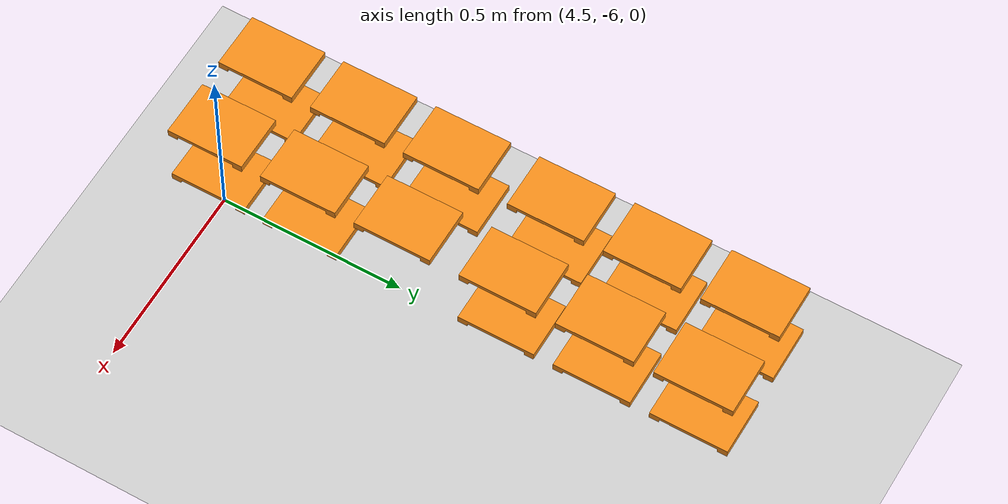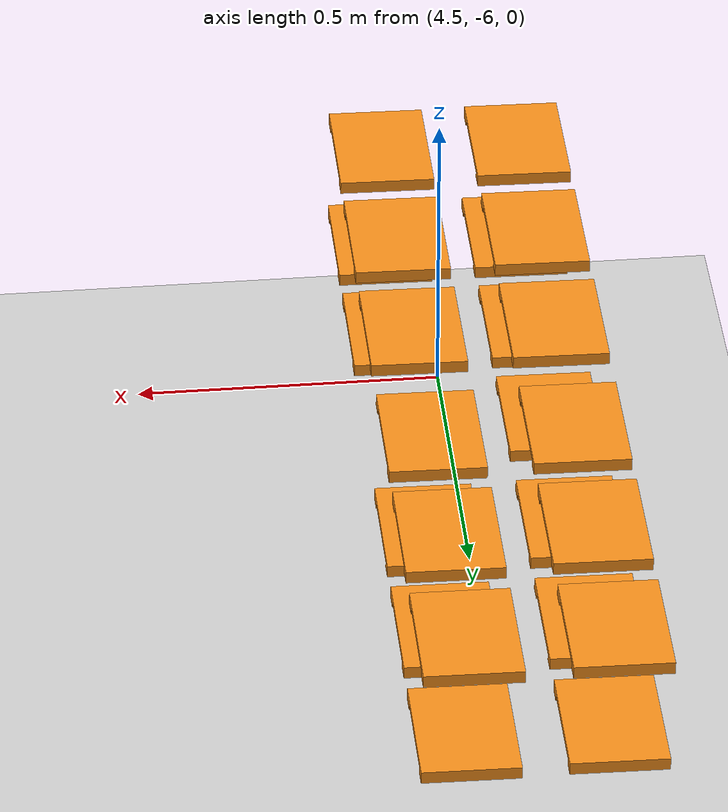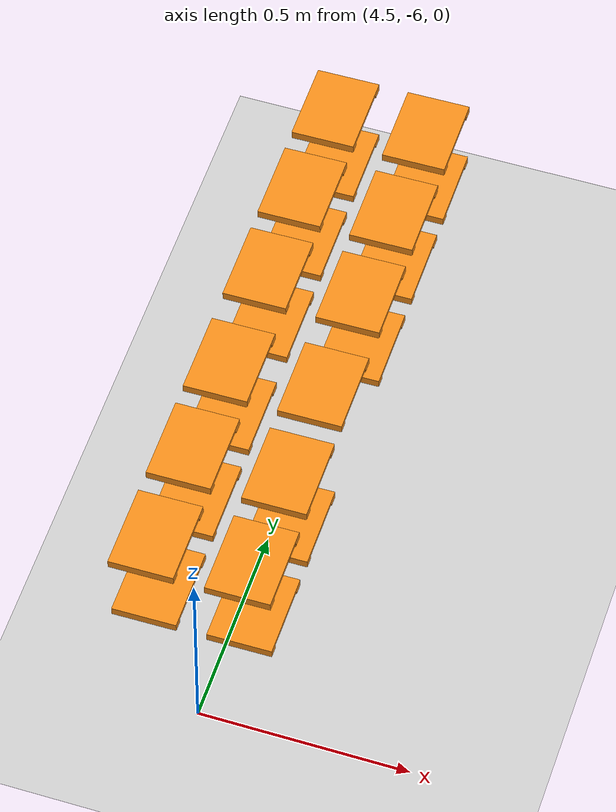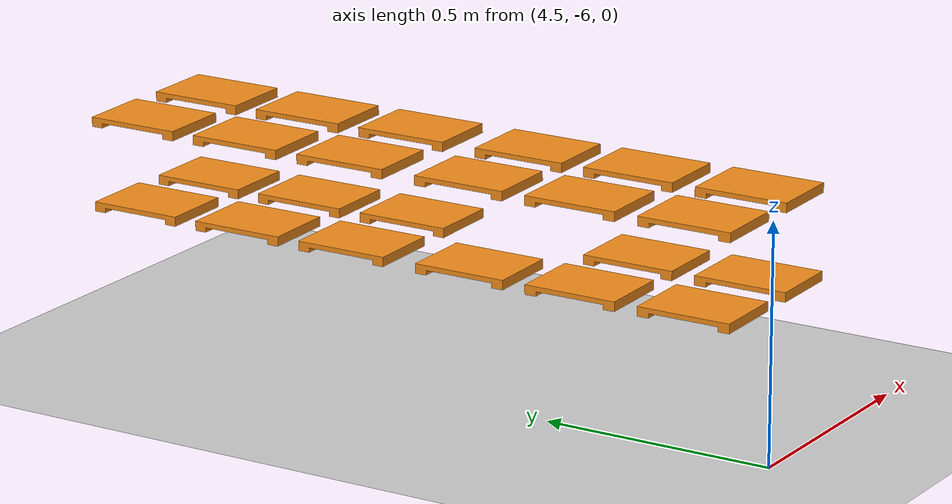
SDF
<sdf version="1.7">
 <world name="default">
  <model name="ground_plane">
   <static>1</static>
   <link name="link">
    <collision name="collision">
     <geometry><plane><normal>0 0 1</normal><size>100 100</size></plane></geometry>
     <surface>
      <contact><collide_bitmask>65535</collide_bitmask></contact>
      <friction><ode><mu>1</mu><mu2>1</mu2></ode></friction>
     </surface>
    </collision>
    <visual name="visual">
     <cast_shadows>0</cast_shadows>
     <geometry><plane><normal>0 0 1</normal><size>100 100</size></plane></geometry>
     <material>
      <script><uri>file://media/materials/scripts/gazebo.material</uri><name>Gazebo/Grey</name></script>
     </material>
    </visual>
   </link>
  </model>
  <model name="pallet_271">
   <pose>4.60366 -4.887 0.51103 2.8e-05 -0.012379 -1.6e-05</pose>
   <link name="link">
    <inertial>
     <pose>0 0 0 0 -0 1.571</pose>
     <inertia>
      <ixx>0.00220983</ixx>
      <ixy>0</ixy>
      <ixz>0</ixz>
      <iyy>0.00128087</iyy>
      <iyz>0</iyz>
      <izz>0.00244903</izz>
     </inertia>
     <mass>0.01</mass>
    </inertial>
    <visual name="visual1">
     <cast_shadows>0</cast_shadows>
     <geometry><mesh><uri>model://pallet/meshes/pallet.stl</uri></mesh></geometry>
     <material>
      <script><uri>file://media/materials/scripts/gazebo.material</uri><name>Gazebo/Orange</name></script>
      <shader type="pixel"><normal_map>__default__</normal_map></shader>
      <emissive>0 0 0 1</emissive>
     </material>
     <pose>0 0 -0 0 -0 1.571</pose>
    </visual>
    <collision name="collision_0">
     <pose>0 0 0 0 -0 1.571</pose>
     <geometry><mesh><uri>model://pallet/meshes/pallet.stl</uri></mesh></geometry>
     <surface>
      <friction>
       <ode><mu>1</mu><mu2>1</mu2><fdir1>0 0 0</fdir1><slip1>0</slip1><slip2>0</slip2></ode>
       <torsional>
        <coefficient>1</coefficient>
        <patch_radius>0</patch_radius>
        <surface_radius>0</surface_radius>
        <use_patch_radius>1</use_patch_radius>
        <ode><slip>0</slip></ode>
       </torsional>
      </friction>
      <bounce><restitution_coefficient>0</restitution_coefficient><threshold>1e+06</threshold></bounce>
      <contact>
       <collide_without_contact>0</collide_without_contact>
       <collide_without_contact_bitmask>1</collide_without_contact_bitmask>
       <collide_bitmask>1</collide_bitmask>
       <ode>
        <soft_cfm>0</soft_cfm>
        <soft_erp>0.2</soft_erp>
        <kp>1e+13</kp>
        <kd>1</kd>
        <max_vel>0.01</max_vel>
        <min_depth>0</min_depth>
       </ode>
       <bullet>
        <split_impulse>1</split_impulse>
        <split_impulse_penetration_threshold>-0.01</split_impulse_penetration_threshold>
        <soft_cfm>0</soft_cfm>
        <soft_erp>0.2</soft_erp>
        <kp>1e+13</kp>
        <kd>1</kd>
       </bullet>
      </contact>
     </surface>
    </collision>
   </link>
   <static>0</static>
  </model>
  <model name="pallet_272">
   <pose>4.60366 -4.637 0.511032 4e-06 -0.012376 1.3e-05</pose>
   <link name="link">
    <inertial>
     <pose>0 0 0 0 -0 1.571</pose>
     <inertia>
      <ixx>0.00220983</ixx>
      <ixy>0</ixy>
      <ixz>0</ixz>
      <iyy>0.00128087</iyy>
      <iyz>0</iyz>
      <izz>0.00244903</izz>
     </inertia>
     <mass>0.01</mass>
    </inertial>
    <visual name="visual1">
     <cast_shadows>0</cast_shadows>
     <geometry><mesh><uri>model://pallet/meshes/pallet.stl</uri></mesh></geometry>
     <material>
      <script><uri>file://media/materials/scripts/gazebo.material</uri><name>Gazebo/Orange</name></script>
      <shader type="pixel"><normal_map>__default__</normal_map></shader>
      <emissive>0 0 0 1</emissive>
     </material>
     <pose>0 0 -0 0 -0 1.571</pose>
    </visual>
    <collision name="collision_0">
     <pose>0 0 0 0 -0 1.571</pose>
     <geometry><mesh><uri>model://pallet/meshes/pallet.stl</uri></mesh></geometry>
     <surface>
      <friction>
       <ode><mu>1</mu><mu2>1</mu2><fdir1>0 0 0</fdir1><slip1>0</slip1><slip2>0</slip2></ode>
       <torsional>
        <coefficient>1</coefficient>
        <patch_radius>0</patch_radius>
        <surface_radius>0</surface_radius>
        <use_patch_radius>1</use_patch_radius>
        <ode><slip>0</slip></ode>
       </torsional>
      </friction>
      <bounce><restitution_coefficient>0</restitution_coefficient><threshold>1e+06</threshold></bounce>
      <contact>
       <collide_without_contact>0</collide_without_contact>
       <collide_without_contact_bitmask>1</collide_without_contact_bitmask>
       <collide_bitmask>1</collide_bitmask>
       <ode>
        <soft_cfm>0</soft_cfm>
        <soft_erp>0.2</soft_erp>
        <kp>1e+13</kp>
        <kd>1</kd>
        <max_vel>0.01</max_vel>
        <min_depth>0</min_depth>
       </ode>
       <bullet>
        <split_impulse>1</split_impulse>
        <split_impulse_penetration_threshold>-0.01</split_impulse_penetration_threshold>
        <soft_cfm>0</soft_cfm>
        <soft_erp>0.2</soft_erp>
        <kp>1e+13</kp>
        <kd>1</kd>
       </bullet>
      </contact>
     </surface>
    </collision>
   </link>
   <static>0</static>
  </model>
  <model name="pallet_273">
   <pose>4.60367 -5.137 0.51103 2.9e-05 -0.012377 1.6e-05</pose>
   <link name="link">
    <inertial>
     <pose>0 0 0 0 -0 1.571</pose>
     <inertia>
      <ixx>0.00220983</ixx>
      <ixy>0</ixy>
      <ixz>0</ixz>
      <iyy>0.00128087</iyy>
      <iyz>0</iyz>
      <izz>0.00244903</izz>
     </inertia>
     <mass>0.01</mass>
    </inertial>
    <visual name="visual1">
     <cast_shadows>0</cast_shadows>
     <geometry><mesh><uri>model://pallet/meshes/pallet.stl</uri></mesh></geometry>
     <material>
      <script><uri>file://media/materials/scripts/gazebo.material</uri><name>Gazebo/Orange</name></script>
      <shader type="pixel"><normal_map>__default__</normal_map></shader>
      <emissive>0 0 0 1</emissive>
     </material>
     <pose>0 0 -0 0 -0 1.571</pose>
    </visual>
    <collision name="collision_0">
     <pose>0 0 0 0 -0 1.571</pose>
     <geometry><mesh><uri>model://pallet/meshes/pallet.stl</uri></mesh></geometry>
     <surface>
      <friction>
       <ode><mu>1</mu><mu2>1</mu2><fdir1>0 0 0</fdir1><slip1>0</slip1><slip2>0</slip2></ode>
       <torsional>
        <coefficient>1</coefficient>
        <patch_radius>0</patch_radius>
        <surface_radius>0</surface_radius>
        <use_patch_radius>1</use_patch_radius>
        <ode><slip>0</slip></ode>
       </torsional>
      </friction>
      <bounce><restitution_coefficient>0</restitution_coefficient><threshold>1e+06</threshold></bounce>
      <contact>
       <collide_without_contact>0</collide_without_contact>
       <collide_without_contact_bitmask>1</collide_without_contact_bitmask>
       <collide_bitmask>1</collide_bitmask>
       <ode>
        <soft_cfm>0</soft_cfm>
        <soft_erp>0.2</soft_erp>
        <kp>1e+13</kp>
        <kd>1</kd>
        <max_vel>0.01</max_vel>
        <min_depth>0</min_depth>
       </ode>
       <bullet>
        <split_impulse>1</split_impulse>
        <split_impulse_penetration_threshold>-0.01</split_impulse_penetration_threshold>
        <soft_cfm>0</soft_cfm>
        <soft_erp>0.2</soft_erp>
        <kp>1e+13</kp>
        <kd>1</kd>
       </bullet>
      </contact>
     </surface>
    </collision>
   </link>
   <static>0</static>
  </model>
  <model name="pallet_274">
   <pose>4.60367 -5.6625 0.511029 2.3e-05 -0.012377 -2e-06</pose>
   <link name="link">
    <inertial>
     <pose>0 0 0 0 -0 1.571</pose>
     <inertia>
      <ixx>0.00220983</ixx>
      <ixy>0</ixy>
      <ixz>0</ixz>
      <iyy>0.00128087</iyy>
      <iyz>0</iyz>
      <izz>0.00244903</izz>
     </inertia>
     <mass>0.01</mass>
    </inertial>
    <visual name="visual1">
     <cast_shadows>0</cast_shadows>
     <geometry><mesh><uri>model://pallet/meshes/pallet.stl</uri></mesh></geometry>
     <material>
      <script><uri>file://media/materials/scripts/gazebo.material</uri><name>Gazebo/Orange</name></script>
      <shader type="pixel"><normal_map>__default__</normal_map></shader>
      <emissive>0 0 0 1</emissive>
     </material>
     <pose>0 0 -0 0 -0 1.571</pose>
    </visual>
    <collision name="collision_0">
     <pose>0 0 0 0 -0 1.571</pose>
     <geometry><mesh><uri>model://pallet/meshes/pallet.stl</uri></mesh></geometry>
     <surface>
      <friction>
       <ode><mu>1</mu><mu2>1</mu2><fdir1>0 0 0</fdir1><slip1>0</slip1><slip2>0</slip2></ode>
       <torsional>
        <coefficient>1</coefficient>
        <patch_radius>0</patch_radius>
        <surface_radius>0</surface_radius>
        <use_patch_radius>1</use_patch_radius>
        <ode><slip>0</slip></ode>
       </torsional>
      </friction>
      <bounce><restitution_coefficient>0</restitution_coefficient><threshold>1e+06</threshold></bounce>
      <contact>
       <collide_without_contact>0</collide_without_contact>
       <collide_without_contact_bitmask>1</collide_without_contact_bitmask>
       <collide_bitmask>1</collide_bitmask>
       <ode>
        <soft_cfm>0</soft_cfm>
        <soft_erp>0.2</soft_erp>
        <kp>1e+13</kp>
        <kd>1</kd>
        <max_vel>0.01</max_vel>
        <min_depth>0</min_depth>
       </ode>
       <bullet>
        <split_impulse>1</split_impulse>
        <split_impulse_penetration_threshold>-0.01</split_impulse_penetration_threshold>
        <soft_cfm>0</soft_cfm>
        <soft_erp>0.2</soft_erp>
        <kp>1e+13</kp>
        <kd>1</kd>
       </bullet>
      </contact>
     </surface>
    </collision>
   </link>
   <static>0</static>
  </model>
  <model name="pallet_275">
   <pose>4.60367 -5.4125 0.511031 1e-05 -0.012375 1.8e-05</pose>
   <link name="link">
    <inertial>
     <pose>0 0 0 0 -0 1.571</pose>
     <inertia>
      <ixx>0.00220983</ixx>
      <ixy>0</ixy>
      <ixz>0</ixz>
      <iyy>0.00128087</iyy>
      <iyz>0</iyz>
      <izz>0.00244903</izz>
     </inertia>
     <mass>0.01</mass>
    </inertial>
    <visual name="visual1">
     <cast_shadows>0</cast_shadows>
     <geometry><mesh><uri>model://pallet/meshes/pallet.stl</uri></mesh></geometry>
     <material>
      <script><uri>file://media/materials/scripts/gazebo.material</uri><name>Gazebo/Orange</name></script>
      <shader type="pixel"><normal_map>__default__</normal_map></shader>
      <emissive>0 0 0 1</emissive>
     </material>
     <pose>0 0 -0 0 -0 1.571</pose>
    </visual>
    <collision name="collision_0">
     <pose>0 0 0 0 -0 1.571</pose>
     <geometry><mesh><uri>model://pallet/meshes/pallet.stl</uri></mesh></geometry>
     <surface>
      <friction>
       <ode><mu>1</mu><mu2>1</mu2><fdir1>0 0 0</fdir1><slip1>0</slip1><slip2>0</slip2></ode>
       <torsional>
        <coefficient>1</coefficient>
        <patch_radius>0</patch_radius>
        <surface_radius>0</surface_radius>
        <use_patch_radius>1</use_patch_radius>
        <ode><slip>0</slip></ode>
       </torsional>
      </friction>
      <bounce><restitution_coefficient>0</restitution_coefficient><threshold>1e+06</threshold></bounce>
      <contact>
       <collide_without_contact>0</collide_without_contact>
       <collide_without_contact_bitmask>1</collide_without_contact_bitmask>
       <collide_bitmask>1</collide_bitmask>
       <ode>
        <soft_cfm>0</soft_cfm>
        <soft_erp>0.2</soft_erp>
        <kp>1e+13</kp>
        <kd>1</kd>
        <max_vel>0.01</max_vel>
        <min_depth>0</min_depth>
       </ode>
       <bullet>
        <split_impulse>1</split_impulse>
        <split_impulse_penetration_threshold>-0.01</split_impulse_penetration_threshold>
        <soft_cfm>0</soft_cfm>
        <soft_erp>0.2</soft_erp>
        <kp>1e+13</kp>
        <kd>1</kd>
       </bullet>
      </contact>
     </surface>
    </collision>
   </link>
   <static>0</static>
  </model>
  <model name="pallet_276">
   <pose>4.60367 -5.9125 0.511029 1.7e-05 -0.012383 -2e-06</pose>
   <link name="link">
    <inertial>
     <pose>0 0 0 0 -0 1.571</pose>
     <inertia>
      <ixx>0.00220983</ixx>
      <ixy>0</ixy>
      <ixz>0</ixz>
      <iyy>0.00128087</iyy>
      <iyz>0</iyz>
      <izz>0.00244903</izz>
     </inertia>
     <mass>0.01</mass>
    </inertial>
    <visual name="visual1">
     <cast_shadows>0</cast_shadows>
     <geometry><mesh><uri>model://pallet/meshes/pallet.stl</uri></mesh></geometry>
     <material>
      <script><uri>file://media/materials/scripts/gazebo.material</uri><name>Gazebo/Orange</name></script>
      <shader type="pixel"><normal_map>__default__</normal_map></shader>
      <emissive>0 0 0 1</emissive>
     </material>
     <pose>0 0 -0 0 -0 1.571</pose>
    </visual>
    <collision name="collision_0">
     <pose>0 0 0 0 -0 1.571</pose>
     <geometry><mesh><uri>model://pallet/meshes/pallet.stl</uri></mesh></geometry>
     <surface>
      <friction>
       <ode><mu>1</mu><mu2>1</mu2><fdir1>0 0 0</fdir1><slip1>0</slip1><slip2>0</slip2></ode>
       <torsional>
        <coefficient>1</coefficient>
        <patch_radius>0</patch_radius>
        <surface_radius>0</surface_radius>
        <use_patch_radius>1</use_patch_radius>
        <ode><slip>0</slip></ode>
       </torsional>
      </friction>
      <bounce><restitution_coefficient>0</restitution_coefficient><threshold>1e+06</threshold></bounce>
      <contact>
       <collide_without_contact>0</collide_without_contact>
       <collide_without_contact_bitmask>1</collide_without_contact_bitmask>
       <collide_bitmask>1</collide_bitmask>
       <ode>
        <soft_cfm>0</soft_cfm>
        <soft_erp>0.2</soft_erp>
        <kp>1e+13</kp>
        <kd>1</kd>
        <max_vel>0.01</max_vel>
        <min_depth>0</min_depth>
       </ode>
       <bullet>
        <split_impulse>1</split_impulse>
        <split_impulse_penetration_threshold>-0.01</split_impulse_penetration_threshold>
        <soft_cfm>0</soft_cfm>
        <soft_erp>0.2</soft_erp>
        <kp>1e+13</kp>
        <kd>1</kd>
       </bullet>
      </contact>
     </surface>
    </collision>
   </link>
   <static>0</static>
  </model>
  <model name="pallet_283">
   <pose>4.38316 -4.887 0.510949 3.6e-05 -0.013349 -1.7e-05</pose>
   <link name="link">
    <inertial>
     <pose>0 0 0 0 -0 1.571</pose>
     <inertia>
      <ixx>0.00220983</ixx>
      <ixy>0</ixy>
      <ixz>0</ixz>
      <iyy>0.00128087</iyy>
      <iyz>0</iyz>
      <izz>0.00244903</izz>
     </inertia>
     <mass>0.01</mass>
    </inertial>
    <visual name="visual1">
     <cast_shadows>0</cast_shadows>
     <geometry><mesh><uri>model://pallet/meshes/pallet.stl</uri></mesh></geometry>
     <material>
      <script><uri>file://media/materials/scripts/gazebo.material</uri><name>Gazebo/Orange</name></script>
      <shader type="pixel"><normal_map>__default__</normal_map></shader>
      <emissive>0 0 0 1</emissive>
     </material>
     <pose>0 0 -0 0 -0 1.571</pose>
    </visual>
    <collision name="collision_0">
     <pose>0 0 0 0 -0 1.571</pose>
     <geometry><mesh><uri>model://pallet/meshes/pallet.stl</uri></mesh></geometry>
     <surface>
      <friction>
       <ode><mu>1</mu><mu2>1</mu2><fdir1>0 0 0</fdir1><slip1>0</slip1><slip2>0</slip2></ode>
       <torsional>
        <coefficient>1</coefficient>
        <patch_radius>0</patch_radius>
        <surface_radius>0</surface_radius>
        <use_patch_radius>1</use_patch_radius>
        <ode><slip>0</slip></ode>
       </torsional>
      </friction>
      <bounce><restitution_coefficient>0</restitution_coefficient><threshold>1e+06</threshold></bounce>
      <contact>
       <collide_without_contact>0</collide_without_contact>
       <collide_without_contact_bitmask>1</collide_without_contact_bitmask>
       <collide_bitmask>1</collide_bitmask>
       <ode>
        <soft_cfm>0</soft_cfm>
        <soft_erp>0.2</soft_erp>
        <kp>1e+13</kp>
        <kd>1</kd>
        <max_vel>0.01</max_vel>
        <min_depth>0</min_depth>
       </ode>
       <bullet>
        <split_impulse>1</split_impulse>
        <split_impulse_penetration_threshold>-0.01</split_impulse_penetration_threshold>
        <soft_cfm>0</soft_cfm>
        <soft_erp>0.2</soft_erp>
        <kp>1e+13</kp>
        <kd>1</kd>
       </bullet>
      </contact>
     </surface>
    </collision>
   </link>
   <static>0</static>
  </model>
  <model name="pallet_284">
   <pose>4.38316 -4.637 0.510952 1.3e-05 -0.013349 1.4e-05</pose>
   <link name="link">
    <inertial>
     <pose>0 0 0 0 -0 1.571</pose>
     <inertia>
      <ixx>0.00220983</ixx>
      <ixy>0</ixy>
      <ixz>0</ixz>
      <iyy>0.00128087</iyy>
      <iyz>0</iyz>
      <izz>0.00244903</izz>
     </inertia>
     <mass>0.01</mass>
    </inertial>
    <visual name="visual1">
     <cast_shadows>0</cast_shadows>
     <geometry><mesh><uri>model://pallet/meshes/pallet.stl</uri></mesh></geometry>
     <material>
      <script><uri>file://media/materials/scripts/gazebo.material</uri><name>Gazebo/Orange</name></script>
      <shader type="pixel"><normal_map>__default__</normal_map></shader>
      <emissive>0 0 0 1</emissive>
     </material>
     <pose>0 0 -0 0 -0 1.571</pose>
    </visual>
    <collision name="collision_0">
     <pose>0 0 0 0 -0 1.571</pose>
     <geometry><mesh><uri>model://pallet/meshes/pallet.stl</uri></mesh></geometry>
     <surface>
      <friction>
       <ode><mu>1</mu><mu2>1</mu2><fdir1>0 0 0</fdir1><slip1>0</slip1><slip2>0</slip2></ode>
       <torsional>
        <coefficient>1</coefficient>
        <patch_radius>0</patch_radius>
        <surface_radius>0</surface_radius>
        <use_patch_radius>1</use_patch_radius>
        <ode><slip>0</slip></ode>
       </torsional>
      </friction>
      <bounce><restitution_coefficient>0</restitution_coefficient><threshold>1e+06</threshold></bounce>
      <contact>
       <collide_without_contact>0</collide_without_contact>
       <collide_without_contact_bitmask>1</collide_without_contact_bitmask>
       <collide_bitmask>1</collide_bitmask>
       <ode>
        <soft_cfm>0</soft_cfm>
        <soft_erp>0.2</soft_erp>
        <kp>1e+13</kp>
        <kd>1</kd>
        <max_vel>0.01</max_vel>
        <min_depth>0</min_depth>
       </ode>
       <bullet>
        <split_impulse>1</split_impulse>
        <split_impulse_penetration_threshold>-0.01</split_impulse_penetration_threshold>
        <soft_cfm>0</soft_cfm>
        <soft_erp>0.2</soft_erp>
        <kp>1e+13</kp>
        <kd>1</kd>
       </bullet>
      </contact>
     </surface>
    </collision>
   </link>
   <static>0</static>
  </model>
  <model name="pallet_285">
   <pose>4.38316 -5.137 0.510949 2.2e-05 -0.01335 9e-06</pose>
   <link name="link">
    <inertial>
     <pose>0 0 0 0 -0 1.571</pose>
     <inertia>
      <ixx>0.00220983</ixx>
      <ixy>0</ixy>
      <ixz>0</ixz>
      <iyy>0.00128087</iyy>
      <iyz>0</iyz>
      <izz>0.00244903</izz>
     </inertia>
     <mass>0.01</mass>
    </inertial>
    <visual name="visual1">
     <cast_shadows>0</cast_shadows>
     <geometry><mesh><uri>model://pallet/meshes/pallet.stl</uri></mesh></geometry>
     <material>
      <script><uri>file://media/materials/scripts/gazebo.material</uri><name>Gazebo/Orange</name></script>
      <shader type="pixel"><normal_map>__default__</normal_map></shader>
      <emissive>0 0 0 1</emissive>
     </material>
     <pose>0 0 -0 0 -0 1.571</pose>
    </visual>
    <collision name="collision_0">
     <pose>0 0 0 0 -0 1.571</pose>
     <geometry><mesh><uri>model://pallet/meshes/pallet.stl</uri></mesh></geometry>
     <surface>
      <friction>
       <ode><mu>1</mu><mu2>1</mu2><fdir1>0 0 0</fdir1><slip1>0</slip1><slip2>0</slip2></ode>
       <torsional>
        <coefficient>1</coefficient>
        <patch_radius>0</patch_radius>
        <surface_radius>0</surface_radius>
        <use_patch_radius>1</use_patch_radius>
        <ode><slip>0</slip></ode>
       </torsional>
      </friction>
      <bounce><restitution_coefficient>0</restitution_coefficient><threshold>1e+06</threshold></bounce>
      <contact>
       <collide_without_contact>0</collide_without_contact>
       <collide_without_contact_bitmask>1</collide_without_contact_bitmask>
       <collide_bitmask>1</collide_bitmask>
       <ode>
        <soft_cfm>0</soft_cfm>
        <soft_erp>0.2</soft_erp>
        <kp>1e+13</kp>
        <kd>1</kd>
        <max_vel>0.01</max_vel>
        <min_depth>0</min_depth>
       </ode>
       <bullet>
        <split_impulse>1</split_impulse>
        <split_impulse_penetration_threshold>-0.01</split_impulse_penetration_threshold>
        <soft_cfm>0</soft_cfm>
        <soft_erp>0.2</soft_erp>
        <kp>1e+13</kp>
        <kd>1</kd>
       </bullet>
      </contact>
     </surface>
    </collision>
   </link>
   <static>0</static>
  </model>
  <model name="pallet_286">
   <pose>4.38317 -5.6625 0.510947 3.9e-05 -0.013348 -1e-06</pose>
   <link name="link">
    <inertial>
     <pose>0 0 0 0 -0 1.571</pose>
     <inertia>
      <ixx>0.00220983</ixx>
      <ixy>0</ixy>
      <ixz>0</ixz>
      <iyy>0.00128087</iyy>
      <iyz>0</iyz>
      <izz>0.00244903</izz>
     </inertia>
     <mass>0.01</mass>
    </inertial>
    <visual name="visual1">
     <cast_shadows>0</cast_shadows>
     <geometry><mesh><uri>model://pallet/meshes/pallet.stl</uri></mesh></geometry>
     <material>
      <script><uri>file://media/materials/scripts/gazebo.material</uri><name>Gazebo/Orange</name></script>
      <shader type="pixel"><normal_map>__default__</normal_map></shader>
      <emissive>0 0 0 1</emissive>
     </material>
     <pose>0 0 -0 0 -0 1.571</pose>
    </visual>
    <collision name="collision_0">
     <pose>0 0 0 0 -0 1.571</pose>
     <geometry><mesh><uri>model://pallet/meshes/pallet.stl</uri></mesh></geometry>
     <surface>
      <friction>
       <ode><mu>1</mu><mu2>1</mu2><fdir1>0 0 0</fdir1><slip1>0</slip1><slip2>0</slip2></ode>
       <torsional>
        <coefficient>1</coefficient>
        <patch_radius>0</patch_radius>
        <surface_radius>0</surface_radius>
        <use_patch_radius>1</use_patch_radius>
        <ode><slip>0</slip></ode>
       </torsional>
      </friction>
      <bounce><restitution_coefficient>0</restitution_coefficient><threshold>1e+06</threshold></bounce>
      <contact>
       <collide_without_contact>0</collide_without_contact>
       <collide_without_contact_bitmask>1</collide_without_contact_bitmask>
       <collide_bitmask>1</collide_bitmask>
       <ode>
        <soft_cfm>0</soft_cfm>
        <soft_erp>0.2</soft_erp>
        <kp>1e+13</kp>
        <kd>1</kd>
        <max_vel>0.01</max_vel>
        <min_depth>0</min_depth>
       </ode>
       <bullet>
        <split_impulse>1</split_impulse>
        <split_impulse_penetration_threshold>-0.01</split_impulse_penetration_threshold>
        <soft_cfm>0</soft_cfm>
        <soft_erp>0.2</soft_erp>
        <kp>1e+13</kp>
        <kd>1</kd>
       </bullet>
      </contact>
     </surface>
    </collision>
   </link>
   <static>0</static>
  </model>
  <model name="pallet_287">
   <pose>4.38317 -5.4125 0.51095 2e-06 -0.013348 2.6e-05</pose>
   <link name="link">
    <inertial>
     <pose>0 0 0 0 -0 1.571</pose>
     <inertia>
      <ixx>0.00220983</ixx>
      <ixy>0</ixy>
      <ixz>0</ixz>
      <iyy>0.00128087</iyy>
      <iyz>0</iyz>
      <izz>0.00244903</izz>
     </inertia>
     <mass>0.01</mass>
    </inertial>
    <visual name="visual1">
     <cast_shadows>0</cast_shadows>
     <geometry><mesh><uri>model://pallet/meshes/pallet.stl</uri></mesh></geometry>
     <material>
      <script><uri>file://media/materials/scripts/gazebo.material</uri><name>Gazebo/Orange</name></script>
      <shader type="pixel"><normal_map>__default__</normal_map></shader>
      <emissive>0 0 0 1</emissive>
     </material>
     <pose>0 0 -0 0 -0 1.571</pose>
    </visual>
    <collision name="collision_0">
     <pose>0 0 0 0 -0 1.571</pose>
     <geometry><mesh><uri>model://pallet/meshes/pallet.stl</uri></mesh></geometry>
     <surface>
      <friction>
       <ode><mu>1</mu><mu2>1</mu2><fdir1>0 0 0</fdir1><slip1>0</slip1><slip2>0</slip2></ode>
       <torsional>
        <coefficient>1</coefficient>
        <patch_radius>0</patch_radius>
        <surface_radius>0</surface_radius>
        <use_patch_radius>1</use_patch_radius>
        <ode><slip>0</slip></ode>
       </torsional>
      </friction>
      <bounce><restitution_coefficient>0</restitution_coefficient><threshold>1e+06</threshold></bounce>
      <contact>
       <collide_without_contact>0</collide_without_contact>
       <collide_without_contact_bitmask>1</collide_without_contact_bitmask>
       <collide_bitmask>1</collide_bitmask>
       <ode>
        <soft_cfm>0</soft_cfm>
        <soft_erp>0.2</soft_erp>
        <kp>1e+13</kp>
        <kd>1</kd>
        <max_vel>0.01</max_vel>
        <min_depth>0</min_depth>
       </ode>
       <bullet>
        <split_impulse>1</split_impulse>
        <split_impulse_penetration_threshold>-0.01</split_impulse_penetration_threshold>
        <soft_cfm>0</soft_cfm>
        <soft_erp>0.2</soft_erp>
        <kp>1e+13</kp>
        <kd>1</kd>
       </bullet>
      </contact>
     </surface>
    </collision>
   </link>
   <static>0</static>
  </model>
  <model name="pallet_288">
   <pose>4.38317 -5.9125 0.510948 2e-05 -0.01335 -3e-06</pose>
   <link name="link">
    <inertial>
     <pose>0 0 0 0 -0 1.571</pose>
     <inertia>
      <ixx>0.00220983</ixx>
      <ixy>0</ixy>
      <ixz>0</ixz>
      <iyy>0.00128087</iyy>
      <iyz>0</iyz>
      <izz>0.00244903</izz>
     </inertia>
     <mass>0.01</mass>
    </inertial>
    <visual name="visual1">
     <cast_shadows>0</cast_shadows>
     <geometry><mesh><uri>model://pallet/meshes/pallet.stl</uri></mesh></geometry>
     <material>
      <script><uri>file://media/materials/scripts/gazebo.material</uri><name>Gazebo/Orange</name></script>
      <shader type="pixel"><normal_map>__default__</normal_map></shader>
      <emissive>0 0 0 1</emissive>
     </material>
     <pose>0 0 -0 0 -0 1.571</pose>
    </visual>
    <collision name="collision_0">
     <pose>0 0 0 0 -0 1.571</pose>
     <geometry><mesh><uri>model://pallet/meshes/pallet.stl</uri></mesh></geometry>
     <surface>
      <friction>
       <ode><mu>1</mu><mu2>1</mu2><fdir1>0 0 0</fdir1><slip1>0</slip1><slip2>0</slip2></ode>
       <torsional>
        <coefficient>1</coefficient>
        <patch_radius>0</patch_radius>
        <surface_radius>0</surface_radius>
        <use_patch_radius>1</use_patch_radius>
        <ode><slip>0</slip></ode>
       </torsional>
      </friction>
      <bounce><restitution_coefficient>0</restitution_coefficient><threshold>1e+06</threshold></bounce>
      <contact>
       <collide_without_contact>0</collide_without_contact>
       <collide_without_contact_bitmask>1</collide_without_contact_bitmask>
       <collide_bitmask>1</collide_bitmask>
       <ode>
        <soft_cfm>0</soft_cfm>
        <soft_erp>0.2</soft_erp>
        <kp>1e+13</kp>
        <kd>1</kd>
        <max_vel>0.01</max_vel>
        <min_depth>0</min_depth>
       </ode>
       <bullet>
        <split_impulse>1</split_impulse>
        <split_impulse_penetration_threshold>-0.01</split_impulse_penetration_threshold>
        <soft_cfm>0</soft_cfm>
        <soft_erp>0.2</soft_erp>
        <kp>1e+13</kp>
        <kd>1</kd>
       </bullet>
      </contact>
     </surface>
    </collision>
   </link>
   <static>0</static>
  </model>
  <model name="pallet_295">
   <pose>4.38557 -4.887 0.330966 2.8e-05 -0.013348 3e-06</pose>
   <link name="link">
    <inertial>
     <pose>0 0 0 0 -0 1.571</pose>
     <inertia>
      <ixx>0.00220983</ixx>
      <ixy>0</ixy>
      <ixz>0</ixz>
      <iyy>0.00128087</iyy>
      <iyz>0</iyz>
      <izz>0.00244903</izz>
     </inertia>
     <mass>0.01</mass>
    </inertial>
    <visual name="visual1">
     <cast_shadows>0</cast_shadows>
     <geometry><mesh><uri>model://pallet/meshes/pallet.stl</uri></mesh></geometry>
     <material>
      <script><uri>file://media/materials/scripts/gazebo.material</uri><name>Gazebo/Orange</name></script>
      <shader type="pixel"><normal_map>__default__</normal_map></shader>
      <emissive>0 0 0 1</emissive>
     </material>
     <pose>0 0 -0 0 -0 1.571</pose>
    </visual>
    <collision name="collision_0">
     <pose>0 0 0 0 -0 1.571</pose>
     <geometry><mesh><uri>model://pallet/meshes/pallet.stl</uri></mesh></geometry>
     <surface>
      <friction>
       <ode><mu>1</mu><mu2>1</mu2><fdir1>0 0 0</fdir1><slip1>0</slip1><slip2>0</slip2></ode>
       <torsional>
        <coefficient>1</coefficient>
        <patch_radius>0</patch_radius>
        <surface_radius>0</surface_radius>
        <use_patch_radius>1</use_patch_radius>
        <ode><slip>0</slip></ode>
       </torsional>
      </friction>
      <bounce><restitution_coefficient>0</restitution_coefficient><threshold>1e+06</threshold></bounce>
      <contact>
       <collide_without_contact>0</collide_without_contact>
       <collide_without_contact_bitmask>1</collide_without_contact_bitmask>
       <collide_bitmask>1</collide_bitmask>
       <ode>
        <soft_cfm>0</soft_cfm>
        <soft_erp>0.2</soft_erp>
        <kp>1e+13</kp>
        <kd>1</kd>
        <max_vel>0.01</max_vel>
        <min_depth>0</min_depth>
       </ode>
       <bullet>
        <split_impulse>1</split_impulse>
        <split_impulse_penetration_threshold>-0.01</split_impulse_penetration_threshold>
        <soft_cfm>0</soft_cfm>
        <soft_erp>0.2</soft_erp>
        <kp>1e+13</kp>
        <kd>1</kd>
       </bullet>
      </contact>
     </surface>
    </collision>
   </link>
   <static>0</static>
  </model>
  <model name="pallet_296">
   <pose>4.38556 -4.637 0.330967 2.4e-05 -0.013349 8e-06</pose>
   <link name="link">
    <inertial>
     <pose>0 0 0 0 -0 1.571</pose>
     <inertia>
      <ixx>0.00220983</ixx>
      <ixy>0</ixy>
      <ixz>0</ixz>
      <iyy>0.00128087</iyy>
      <iyz>0</iyz>
      <izz>0.00244903</izz>
     </inertia>
     <mass>0.01</mass>
    </inertial>
    <visual name="visual1">
     <cast_shadows>0</cast_shadows>
     <geometry><mesh><uri>model://pallet/meshes/pallet.stl</uri></mesh></geometry>
     <material>
      <script><uri>file://media/materials/scripts/gazebo.material</uri><name>Gazebo/Orange</name></script>
      <shader type="pixel"><normal_map>__default__</normal_map></shader>
      <emissive>0 0 0 1</emissive>
     </material>
     <pose>0 0 -0 0 -0 1.571</pose>
    </visual>
    <collision name="collision_0">
     <pose>0 0 0 0 -0 1.571</pose>
     <geometry><mesh><uri>model://pallet/meshes/pallet.stl</uri></mesh></geometry>
     <surface>
      <friction>
       <ode><mu>1</mu><mu2>1</mu2><fdir1>0 0 0</fdir1><slip1>0</slip1><slip2>0</slip2></ode>
       <torsional>
        <coefficient>1</coefficient>
        <patch_radius>0</patch_radius>
        <surface_radius>0</surface_radius>
        <use_patch_radius>1</use_patch_radius>
        <ode><slip>0</slip></ode>
       </torsional>
      </friction>
      <bounce><restitution_coefficient>0</restitution_coefficient><threshold>1e+06</threshold></bounce>
      <contact>
       <collide_without_contact>0</collide_without_contact>
       <collide_without_contact_bitmask>1</collide_without_contact_bitmask>
       <collide_bitmask>1</collide_bitmask>
       <ode>
        <soft_cfm>0</soft_cfm>
        <soft_erp>0.2</soft_erp>
        <kp>1e+13</kp>
        <kd>1</kd>
        <max_vel>0.01</max_vel>
        <min_depth>0</min_depth>
       </ode>
       <bullet>
        <split_impulse>1</split_impulse>
        <split_impulse_penetration_threshold>-0.01</split_impulse_penetration_threshold>
        <soft_cfm>0</soft_cfm>
        <soft_erp>0.2</soft_erp>
        <kp>1e+13</kp>
        <kd>1</kd>
       </bullet>
      </contact>
     </surface>
    </collision>
   </link>
   <static>0</static>
  </model>
  <model name="pallet_297">
   <pose>4.38557 -5.137 0.330966 2e-05 -0.013348 8e-06</pose>
   <link name="link">
    <inertial>
     <pose>0 0 0 0 -0 1.571</pose>
     <inertia>
      <ixx>0.00220983</ixx>
      <ixy>0</ixy>
      <ixz>0</ixz>
      <iyy>0.00128087</iyy>
      <iyz>0</iyz>
      <izz>0.00244903</izz>
     </inertia>
     <mass>0.01</mass>
    </inertial>
    <visual name="visual1">
     <cast_shadows>0</cast_shadows>
     <geometry><mesh><uri>model://pallet/meshes/pallet.stl</uri></mesh></geometry>
     <material>
      <script><uri>file://media/materials/scripts/gazebo.material</uri><name>Gazebo/Orange</name></script>
      <shader type="pixel"><normal_map>__default__</normal_map></shader>
      <emissive>0 0 0 1</emissive>
     </material>
     <pose>0 0 -0 0 -0 1.571</pose>
    </visual>
    <collision name="collision_0">
     <pose>0 0 0 0 -0 1.571</pose>
     <geometry><mesh><uri>model://pallet/meshes/pallet.stl</uri></mesh></geometry>
     <surface>
      <friction>
       <ode><mu>1</mu><mu2>1</mu2><fdir1>0 0 0</fdir1><slip1>0</slip1><slip2>0</slip2></ode>
       <torsional>
        <coefficient>1</coefficient>
        <patch_radius>0</patch_radius>
        <surface_radius>0</surface_radius>
        <use_patch_radius>1</use_patch_radius>
        <ode><slip>0</slip></ode>
       </torsional>
      </friction>
      <bounce><restitution_coefficient>0</restitution_coefficient><threshold>1e+06</threshold></bounce>
      <contact>
       <collide_without_contact>0</collide_without_contact>
       <collide_without_contact_bitmask>1</collide_without_contact_bitmask>
       <collide_bitmask>1</collide_bitmask>
       <ode>
        <soft_cfm>0</soft_cfm>
        <soft_erp>0.2</soft_erp>
        <kp>1e+13</kp>
        <kd>1</kd>
        <max_vel>0.01</max_vel>
        <min_depth>0</min_depth>
       </ode>
       <bullet>
        <split_impulse>1</split_impulse>
        <split_impulse_penetration_threshold>-0.01</split_impulse_penetration_threshold>
        <soft_cfm>0</soft_cfm>
        <soft_erp>0.2</soft_erp>
        <kp>1e+13</kp>
        <kd>1</kd>
       </bullet>
      </contact>
     </surface>
    </collision>
   </link>
   <static>0</static>
  </model>
  <model name="pallet_298">
   <pose>4.38557 -5.6625 0.330964 2.7e-05 -0.013349 3e-06</pose>
   <link name="link">
    <inertial>
     <pose>0 0 0 0 -0 1.571</pose>
     <inertia>
      <ixx>0.00220983</ixx>
      <ixy>0</ixy>
      <ixz>0</ixz>
      <iyy>0.00128087</iyy>
      <iyz>0</iyz>
      <izz>0.00244903</izz>
     </inertia>
     <mass>0.01</mass>
    </inertial>
    <visual name="visual1">
     <cast_shadows>0</cast_shadows>
     <geometry><mesh><uri>model://pallet/meshes/pallet.stl</uri></mesh></geometry>
     <material>
      <script><uri>file://media/materials/scripts/gazebo.material</uri><name>Gazebo/Orange</name></script>
      <shader type="pixel"><normal_map>__default__</normal_map></shader>
      <emissive>0 0 0 1</emissive>
     </material>
     <pose>0 0 -0 0 -0 1.571</pose>
    </visual>
    <collision name="collision_0">
     <pose>0 0 0 0 -0 1.571</pose>
     <geometry><mesh><uri>model://pallet/meshes/pallet.stl</uri></mesh></geometry>
     <surface>
      <friction>
       <ode><mu>1</mu><mu2>1</mu2><fdir1>0 0 0</fdir1><slip1>0</slip1><slip2>0</slip2></ode>
       <torsional>
        <coefficient>1</coefficient>
        <patch_radius>0</patch_radius>
        <surface_radius>0</surface_radius>
        <use_patch_radius>1</use_patch_radius>
        <ode><slip>0</slip></ode>
       </torsional>
      </friction>
      <bounce><restitution_coefficient>0</restitution_coefficient><threshold>1e+06</threshold></bounce>
      <contact>
       <collide_without_contact>0</collide_without_contact>
       <collide_without_contact_bitmask>1</collide_without_contact_bitmask>
       <collide_bitmask>1</collide_bitmask>
       <ode>
        <soft_cfm>0</soft_cfm>
        <soft_erp>0.2</soft_erp>
        <kp>1e+13</kp>
        <kd>1</kd>
        <max_vel>0.01</max_vel>
        <min_depth>0</min_depth>
       </ode>
       <bullet>
        <split_impulse>1</split_impulse>
        <split_impulse_penetration_threshold>-0.01</split_impulse_penetration_threshold>
        <soft_cfm>0</soft_cfm>
        <soft_erp>0.2</soft_erp>
        <kp>1e+13</kp>
        <kd>1</kd>
       </bullet>
      </contact>
     </surface>
    </collision>
   </link>
   <static>0</static>
  </model>
  <model name="pallet_299">
   <pose>4.38557 -5.4125 0.330965 1.8e-05 -0.013348 1.1e-05</pose>
   <link name="link">
    <inertial>
     <pose>0 0 0 0 -0 1.571</pose>
     <inertia>
      <ixx>0.00220983</ixx>
      <ixy>0</ixy>
      <ixz>0</ixz>
      <iyy>0.00128087</iyy>
      <iyz>0</iyz>
      <izz>0.00244903</izz>
     </inertia>
     <mass>0.01</mass>
    </inertial>
    <visual name="visual1">
     <cast_shadows>0</cast_shadows>
     <geometry><mesh><uri>model://pallet/meshes/pallet.stl</uri></mesh></geometry>
     <material>
      <script><uri>file://media/materials/scripts/gazebo.material</uri><name>Gazebo/Orange</name></script>
      <shader type="pixel"><normal_map>__default__</normal_map></shader>
      <emissive>0 0 0 1</emissive>
     </material>
     <pose>0 0 -0 0 -0 1.571</pose>
    </visual>
    <collision name="collision_0">
     <pose>0 0 0 0 -0 1.571</pose>
     <geometry><mesh><uri>model://pallet/meshes/pallet.stl</uri></mesh></geometry>
     <surface>
      <friction>
       <ode><mu>1</mu><mu2>1</mu2><fdir1>0 0 0</fdir1><slip1>0</slip1><slip2>0</slip2></ode>
       <torsional>
        <coefficient>1</coefficient>
        <patch_radius>0</patch_radius>
        <surface_radius>0</surface_radius>
        <use_patch_radius>1</use_patch_radius>
        <ode><slip>0</slip></ode>
       </torsional>
      </friction>
      <bounce><restitution_coefficient>0</restitution_coefficient><threshold>1e+06</threshold></bounce>
      <contact>
       <collide_without_contact>0</collide_without_contact>
       <collide_without_contact_bitmask>1</collide_without_contact_bitmask>
       <collide_bitmask>1</collide_bitmask>
       <ode>
        <soft_cfm>0</soft_cfm>
        <soft_erp>0.2</soft_erp>
        <kp>1e+13</kp>
        <kd>1</kd>
        <max_vel>0.01</max_vel>
        <min_depth>0</min_depth>
       </ode>
       <bullet>
        <split_impulse>1</split_impulse>
        <split_impulse_penetration_threshold>-0.01</split_impulse_penetration_threshold>
        <soft_cfm>0</soft_cfm>
        <soft_erp>0.2</soft_erp>
        <kp>1e+13</kp>
        <kd>1</kd>
       </bullet>
      </contact>
     </surface>
    </collision>
   </link>
   <static>0</static>
  </model>
  <model name="pallet_300">
   <pose>4.38558 -5.9125 0.330964 2.1e-05 -0.013349 1.1e-05</pose>
   <link name="link">
    <inertial>
     <pose>0 0 0 0 -0 1.571</pose>
     <inertia>
      <ixx>0.00220983</ixx>
      <ixy>0</ixy>
      <ixz>0</ixz>
      <iyy>0.00128087</iyy>
      <iyz>0</iyz>
      <izz>0.00244903</izz>
     </inertia>
     <mass>0.01</mass>
    </inertial>
    <visual name="visual1">
     <cast_shadows>0</cast_shadows>
     <geometry><mesh><uri>model://pallet/meshes/pallet.stl</uri></mesh></geometry>
     <material>
      <script><uri>file://media/materials/scripts/gazebo.material</uri><name>Gazebo/Orange</name></script>
      <shader type="pixel"><normal_map>__default__</normal_map></shader>
      <emissive>0 0 0 1</emissive>
     </material>
     <pose>0 0 -0 0 -0 1.571</pose>
    </visual>
    <collision name="collision_0">
     <pose>0 0 0 0 -0 1.571</pose>
     <geometry><mesh><uri>model://pallet/meshes/pallet.stl</uri></mesh></geometry>
     <surface>
      <friction>
       <ode><mu>1</mu><mu2>1</mu2><fdir1>0 0 0</fdir1><slip1>0</slip1><slip2>0</slip2></ode>
       <torsional>
        <coefficient>1</coefficient>
        <patch_radius>0</patch_radius>
        <surface_radius>0</surface_radius>
        <use_patch_radius>1</use_patch_radius>
        <ode><slip>0</slip></ode>
       </torsional>
      </friction>
      <bounce><restitution_coefficient>0</restitution_coefficient><threshold>1e+06</threshold></bounce>
      <contact>
       <collide_without_contact>0</collide_without_contact>
       <collide_without_contact_bitmask>1</collide_without_contact_bitmask>
       <collide_bitmask>1</collide_bitmask>
       <ode>
        <soft_cfm>0</soft_cfm>
        <soft_erp>0.2</soft_erp>
        <kp>1e+13</kp>
        <kd>1</kd>
        <max_vel>0.01</max_vel>
        <min_depth>0</min_depth>
       </ode>
       <bullet>
        <split_impulse>1</split_impulse>
        <split_impulse_penetration_threshold>-0.01</split_impulse_penetration_threshold>
        <soft_cfm>0</soft_cfm>
        <soft_erp>0.2</soft_erp>
        <kp>1e+13</kp>
        <kd>1</kd>
       </bullet>
      </contact>
     </surface>
    </collision>
   </link>
   <static>0</static>
  </model>
  <model name="pallet_307">
   <pose>4.60589 -4.887 0.331045 1.8e-05 -0.012377 4e-06</pose>
   <link name="link">
    <inertial>
     <pose>0 0 0 0 -0 1.571</pose>
     <inertia>
      <ixx>0.00220983</ixx>
      <ixy>0</ixy>
      <ixz>0</ixz>
      <iyy>0.00128087</iyy>
      <iyz>0</iyz>
      <izz>0.00244903</izz>
     </inertia>
     <mass>0.01</mass>
    </inertial>
    <visual name="visual1">
     <cast_shadows>0</cast_shadows>
     <geometry><mesh><uri>model://pallet/meshes/pallet.stl</uri></mesh></geometry>
     <material>
      <script><uri>file://media/materials/scripts/gazebo.material</uri><name>Gazebo/Orange</name></script>
      <shader type="pixel"><normal_map>__default__</normal_map></shader>
      <emissive>0 0 0 1</emissive>
     </material>
     <pose>0 0 -0 0 -0 1.571</pose>
    </visual>
    <collision name="collision_0">
     <pose>0 0 0 0 -0 1.571</pose>
     <geometry><mesh><uri>model://pallet/meshes/pallet.stl</uri></mesh></geometry>
     <surface>
      <friction>
       <ode><mu>1</mu><mu2>1</mu2><fdir1>0 0 0</fdir1><slip1>0</slip1><slip2>0</slip2></ode>
       <torsional>
        <coefficient>1</coefficient>
        <patch_radius>0</patch_radius>
        <surface_radius>0</surface_radius>
        <use_patch_radius>1</use_patch_radius>
        <ode><slip>0</slip></ode>
       </torsional>
      </friction>
      <bounce><restitution_coefficient>0</restitution_coefficient><threshold>1e+06</threshold></bounce>
      <contact>
       <collide_without_contact>0</collide_without_contact>
       <collide_without_contact_bitmask>1</collide_without_contact_bitmask>
       <collide_bitmask>1</collide_bitmask>
       <ode>
        <soft_cfm>0</soft_cfm>
        <soft_erp>0.2</soft_erp>
        <kp>1e+13</kp>
        <kd>1</kd>
        <max_vel>0.01</max_vel>
        <min_depth>0</min_depth>
       </ode>
       <bullet>
        <split_impulse>1</split_impulse>
        <split_impulse_penetration_threshold>-0.01</split_impulse_penetration_threshold>
        <soft_cfm>0</soft_cfm>
        <soft_erp>0.2</soft_erp>
        <kp>1e+13</kp>
        <kd>1</kd>
       </bullet>
      </contact>
     </surface>
    </collision>
   </link>
   <static>0</static>
  </model>
  <model name="pallet_308">
   <pose>4.60589 -4.637 0.331045 2.6e-05 -0.012375 8e-06</pose>
   <link name="link">
    <inertial>
     <pose>0 0 0 0 -0 1.571</pose>
     <inertia>
      <ixx>0.00220983</ixx>
      <ixy>0</ixy>
      <ixz>0</ixz>
      <iyy>0.00128087</iyy>
      <iyz>0</iyz>
      <izz>0.00244903</izz>
     </inertia>
     <mass>0.01</mass>
    </inertial>
    <visual name="visual1">
     <cast_shadows>0</cast_shadows>
     <geometry><mesh><uri>model://pallet/meshes/pallet.stl</uri></mesh></geometry>
     <material>
      <script><uri>file://media/materials/scripts/gazebo.material</uri><name>Gazebo/Orange</name></script>
      <shader type="pixel"><normal_map>__default__</normal_map></shader>
      <emissive>0 0 0 1</emissive>
     </material>
     <pose>0 0 -0 0 -0 1.571</pose>
    </visual>
    <collision name="collision_0">
     <pose>0 0 0 0 -0 1.571</pose>
     <geometry><mesh><uri>model://pallet/meshes/pallet.stl</uri></mesh></geometry>
     <surface>
      <friction>
       <ode><mu>1</mu><mu2>1</mu2><fdir1>0 0 0</fdir1><slip1>0</slip1><slip2>0</slip2></ode>
       <torsional>
        <coefficient>1</coefficient>
        <patch_radius>0</patch_radius>
        <surface_radius>0</surface_radius>
        <use_patch_radius>1</use_patch_radius>
        <ode><slip>0</slip></ode>
       </torsional>
      </friction>
      <bounce><restitution_coefficient>0</restitution_coefficient><threshold>1e+06</threshold></bounce>
      <contact>
       <collide_without_contact>0</collide_without_contact>
       <collide_without_contact_bitmask>1</collide_without_contact_bitmask>
       <collide_bitmask>1</collide_bitmask>
       <ode>
        <soft_cfm>0</soft_cfm>
        <soft_erp>0.2</soft_erp>
        <kp>1e+13</kp>
        <kd>1</kd>
        <max_vel>0.01</max_vel>
        <min_depth>0</min_depth>
       </ode>
       <bullet>
        <split_impulse>1</split_impulse>
        <split_impulse_penetration_threshold>-0.01</split_impulse_penetration_threshold>
        <soft_cfm>0</soft_cfm>
        <soft_erp>0.2</soft_erp>
        <kp>1e+13</kp>
        <kd>1</kd>
       </bullet>
      </contact>
     </surface>
    </collision>
   </link>
   <static>0</static>
  </model>
  <model name="pallet_309">
   <pose>4.60589 -5.137 0.331043 3.3e-05 -0.012376 9e-06</pose>
   <link name="link">
    <inertial>
     <pose>0 0 0 0 -0 1.571</pose>
     <inertia>
      <ixx>0.00220983</ixx>
      <ixy>0</ixy>
      <ixz>0</ixz>
      <iyy>0.00128087</iyy>
      <iyz>0</iyz>
      <izz>0.00244903</izz>
     </inertia>
     <mass>0.01</mass>
    </inertial>
    <visual name="visual1">
     <cast_shadows>0</cast_shadows>
     <geometry><mesh><uri>model://pallet/meshes/pallet.stl</uri></mesh></geometry>
     <material>
      <script><uri>file://media/materials/scripts/gazebo.material</uri><name>Gazebo/Orange</name></script>
      <shader type="pixel"><normal_map>__default__</normal_map></shader>
      <emissive>0 0 0 1</emissive>
     </material>
     <pose>0 0 -0 0 -0 1.571</pose>
    </visual>
    <collision name="collision_0">
     <pose>0 0 0 0 -0 1.571</pose>
     <geometry><mesh><uri>model://pallet/meshes/pallet.stl</uri></mesh></geometry>
     <surface>
      <friction>
       <ode><mu>1</mu><mu2>1</mu2><fdir1>0 0 0</fdir1><slip1>0</slip1><slip2>0</slip2></ode>
       <torsional>
        <coefficient>1</coefficient>
        <patch_radius>0</patch_radius>
        <surface_radius>0</surface_radius>
        <use_patch_radius>1</use_patch_radius>
        <ode><slip>0</slip></ode>
       </torsional>
      </friction>
      <bounce><restitution_coefficient>0</restitution_coefficient><threshold>1e+06</threshold></bounce>
      <contact>
       <collide_without_contact>0</collide_without_contact>
       <collide_without_contact_bitmask>1</collide_without_contact_bitmask>
       <collide_bitmask>1</collide_bitmask>
       <ode>
        <soft_cfm>0</soft_cfm>
        <soft_erp>0.2</soft_erp>
        <kp>1e+13</kp>
        <kd>1</kd>
        <max_vel>0.01</max_vel>
        <min_depth>0</min_depth>
       </ode>
       <bullet>
        <split_impulse>1</split_impulse>
        <split_impulse_penetration_threshold>-0.01</split_impulse_penetration_threshold>
        <soft_cfm>0</soft_cfm>
        <soft_erp>0.2</soft_erp>
        <kp>1e+13</kp>
        <kd>1</kd>
       </bullet>
      </contact>
     </surface>
    </collision>
   </link>
   <static>0</static>
  </model>
  <model name="pallet_310">
   <pose>4.6059 -5.6625 0.331043 2.7e-05 -0.012376 4e-06</pose>
   <link name="link">
    <inertial>
     <pose>0 0 0 0 -0 1.571</pose>
     <inertia>
      <ixx>0.00220983</ixx>
      <ixy>0</ixy>
      <ixz>0</ixz>
      <iyy>0.00128087</iyy>
      <iyz>0</iyz>
      <izz>0.00244903</izz>
     </inertia>
     <mass>0.01</mass>
    </inertial>
    <visual name="visual1">
     <cast_shadows>0</cast_shadows>
     <geometry><mesh><uri>model://pallet/meshes/pallet.stl</uri></mesh></geometry>
     <material>
      <script><uri>file://media/materials/scripts/gazebo.material</uri><name>Gazebo/Orange</name></script>
      <shader type="pixel"><normal_map>__default__</normal_map></shader>
      <emissive>0 0 0 1</emissive>
     </material>
     <pose>0 0 -0 0 -0 1.571</pose>
    </visual>
    <collision name="collision_0">
     <pose>0 0 0 0 -0 1.571</pose>
     <geometry><mesh><uri>model://pallet/meshes/pallet.stl</uri></mesh></geometry>
     <surface>
      <friction>
       <ode><mu>1</mu><mu2>1</mu2><fdir1>0 0 0</fdir1><slip1>0</slip1><slip2>0</slip2></ode>
       <torsional>
        <coefficient>1</coefficient>
        <patch_radius>0</patch_radius>
        <surface_radius>0</surface_radius>
        <use_patch_radius>1</use_patch_radius>
        <ode><slip>0</slip></ode>
       </torsional>
      </friction>
      <bounce><restitution_coefficient>0</restitution_coefficient><threshold>1e+06</threshold></bounce>
      <contact>
       <collide_without_contact>0</collide_without_contact>
       <collide_without_contact_bitmask>1</collide_without_contact_bitmask>
       <collide_bitmask>1</collide_bitmask>
       <ode>
        <soft_cfm>0</soft_cfm>
        <soft_erp>0.2</soft_erp>
        <kp>1e+13</kp>
        <kd>1</kd>
        <max_vel>0.01</max_vel>
        <min_depth>0</min_depth>
       </ode>
       <bullet>
        <split_impulse>1</split_impulse>
        <split_impulse_penetration_threshold>-0.01</split_impulse_penetration_threshold>
        <soft_cfm>0</soft_cfm>
        <soft_erp>0.2</soft_erp>
        <kp>1e+13</kp>
        <kd>1</kd>
       </bullet>
      </contact>
     </surface>
    </collision>
   </link>
   <static>0</static>
  </model>
  <model name="pallet_312">
   <pose>4.6059 -5.9125 0.331042 3.1e-05 -0.012383 1.2e-05</pose>
   <link name="link">
    <inertial>
     <pose>0 0 0 0 -0 1.571</pose>
     <inertia>
      <ixx>0.00220983</ixx>
      <ixy>0</ixy>
      <ixz>0</ixz>
      <iyy>0.00128087</iyy>
      <iyz>0</iyz>
      <izz>0.00244903</izz>
     </inertia>
     <mass>0.01</mass>
    </inertial>
    <visual name="visual1">
     <cast_shadows>0</cast_shadows>
     <geometry><mesh><uri>model://pallet/meshes/pallet.stl</uri></mesh></geometry>
     <material>
      <script><uri>file://media/materials/scripts/gazebo.material</uri><name>Gazebo/Orange</name></script>
      <shader type="pixel"><normal_map>__default__</normal_map></shader>
      <emissive>0 0 0 1</emissive>
     </material>
     <pose>0 0 -0 0 -0 1.571</pose>
    </visual>
    <collision name="collision_0">
     <pose>0 0 0 0 -0 1.571</pose>
     <geometry><mesh><uri>model://pallet/meshes/pallet.stl</uri></mesh></geometry>
     <surface>
      <friction>
       <ode><mu>1</mu><mu2>1</mu2><fdir1>0 0 0</fdir1><slip1>0</slip1><slip2>0</slip2></ode>
       <torsional>
        <coefficient>1</coefficient>
        <patch_radius>0</patch_radius>
        <surface_radius>0</surface_radius>
        <use_patch_radius>1</use_patch_radius>
        <ode><slip>0</slip></ode>
       </torsional>
      </friction>
      <bounce><restitution_coefficient>0</restitution_coefficient><threshold>1e+06</threshold></bounce>
      <contact>
       <collide_without_contact>0</collide_without_contact>
       <collide_without_contact_bitmask>1</collide_without_contact_bitmask>
       <collide_bitmask>1</collide_bitmask>
       <ode>
        <soft_cfm>0</soft_cfm>
        <soft_erp>0.2</soft_erp>
        <kp>1e+13</kp>
        <kd>1</kd>
        <max_vel>0.01</max_vel>
        <min_depth>0</min_depth>
       </ode>
       <bullet>
        <split_impulse>1</split_impulse>
        <split_impulse_penetration_threshold>-0.01</split_impulse_penetration_threshold>
        <soft_cfm>0</soft_cfm>
        <soft_erp>0.2</soft_erp>
        <kp>1e+13</kp>
        <kd>1</kd>
       </bullet>
      </contact>
     </surface>
    </collision>
   </link>
   <static>0</static>
  </model>
 </world>
</sdf>
